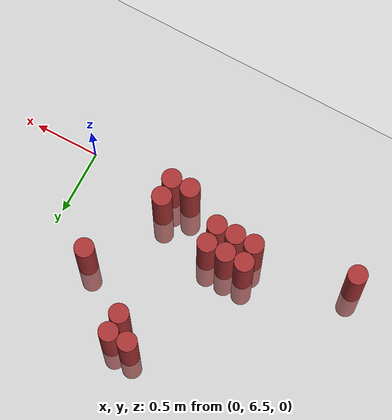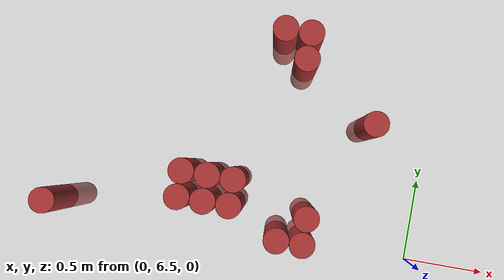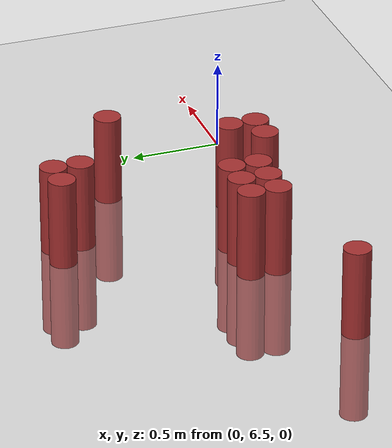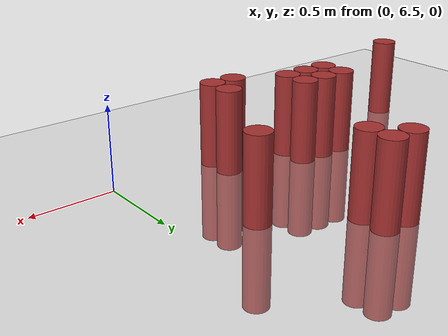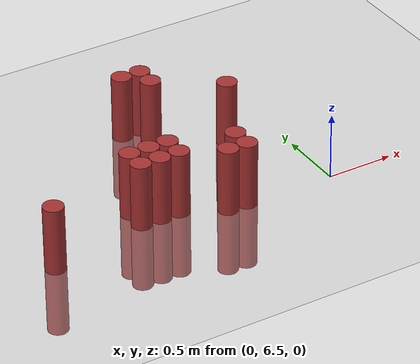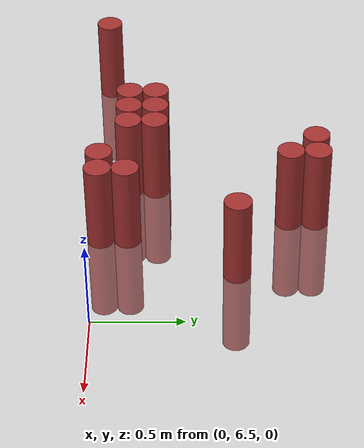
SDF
<sdf version="1.6">
 <world name="world_270">
  <model name="ground_plane">
   <static>1</static>
   <link name="link">
    <collision name="collision">
     <geometry><plane><normal>0 0 1</normal><size>100 100</size></plane></geometry>
     <surface><friction><ode><mu>100</mu><mu2>50</mu2></ode></friction></surface>
    </collision>
    <visual name="visual">
     <cast_shadows>0</cast_shadows>
     <geometry><plane><normal>0 0 1</normal><size>100 100</size></plane></geometry>
     <material>
      <script><uri>file://media/materials/scripts/gazebo.material</uri><name>Gazebo/Grey</name></script>
     </material>
    </visual>
   </link>
  </model>
  <model name="unit_cylinder_159">
   <static>1</static>
   <pose>-2.175000 6.525000 0.000000 0.000000 0.000000 0.000000</pose>
   <link name="link">
    <inertial>
     <mass>1</mass>
     <inertia><ixx>0.145833</ixx><ixy>0</ixy><ixz>0</ixz><iyy>0.145833</iyy><iyz>0</iyz><izz>0.125</izz></inertia>
    </inertial>
    <collision name="collision">
     <geometry><cylinder><radius>0.075000</radius><length>1</length></cylinder></geometry>
    </collision>
    <visual name="visual">
     <geometry><cylinder><radius>0.075000</radius><length>1</length></cylinder></geometry>
     <material>
      <ambient>0.648000 0.192000 0.192000 1</ambient>
      <diffuse>0.648000 0.192000 0.192000 1</diffuse>
     </material>
     <material>
      <script><name>Gazebo/Grey</name><uri>file://media/materials/scripts/gazebo.material</uri></script>
     </material>
    </visual>
   </link>
  </model>
  <model name="unit_cylinder_169">
   <static>1</static>
   <pose>-1.425000 6.675000 0.000000 0.000000 0.000000 0.000000</pose>
   <link name="link">
    <inertial>
     <mass>1</mass>
     <inertia><ixx>0.145833</ixx><ixy>0</ixy><ixz>0</ixz><iyy>0.145833</iyy><iyz>0</iyz><izz>0.125</izz></inertia>
    </inertial>
    <collision name="collision">
     <geometry><cylinder><radius>0.075000</radius><length>1</length></cylinder></geometry>
    </collision>
    <visual name="visual">
     <geometry><cylinder><radius>0.075000</radius><length>1</length></cylinder></geometry>
     <material>
      <ambient>0.648000 0.192000 0.192000 1</ambient>
      <diffuse>0.648000 0.192000 0.192000 1</diffuse>
     </material>
     <material>
      <script><name>Gazebo/Grey</name><uri>file://media/materials/scripts/gazebo.material</uri></script>
     </material>
    </visual>
   </link>
  </model>
  <model name="unit_cylinder_170">
   <static>1</static>
   <pose>-1.425000 6.825000 0.000000 0.000000 0.000000 0.000000</pose>
   <link name="link">
    <inertial>
     <mass>1</mass>
     <inertia><ixx>0.145833</ixx><ixy>0</ixy><ixz>0</ixz><iyy>0.145833</iyy><iyz>0</iyz><izz>0.125</izz></inertia>
    </inertial>
    <collision name="collision">
     <geometry><cylinder><radius>0.075000</radius><length>1</length></cylinder></geometry>
    </collision>
    <visual name="visual">
     <geometry><cylinder><radius>0.075000</radius><length>1</length></cylinder></geometry>
     <material>
      <ambient>0.648000 0.192000 0.192000 1</ambient>
      <diffuse>0.648000 0.192000 0.192000 1</diffuse>
     </material>
     <material>
      <script><name>Gazebo/Grey</name><uri>file://media/materials/scripts/gazebo.material</uri></script>
     </material>
    </visual>
   </link>
  </model>
  <model name="unit_cylinder_173">
   <static>1</static>
   <pose>-1.275000 6.675000 0.000000 0.000000 0.000000 0.000000</pose>
   <link name="link">
    <inertial>
     <mass>1</mass>
     <inertia><ixx>0.145833</ixx><ixy>0</ixy><ixz>0</ixz><iyy>0.145833</iyy><iyz>0</iyz><izz>0.125</izz></inertia>
    </inertial>
    <collision name="collision">
     <geometry><cylinder><radius>0.075000</radius><length>1</length></cylinder></geometry>
    </collision>
    <visual name="visual">
     <geometry><cylinder><radius>0.075000</radius><length>1</length></cylinder></geometry>
     <material>
      <ambient>0.648000 0.192000 0.192000 1</ambient>
      <diffuse>0.648000 0.192000 0.192000 1</diffuse>
     </material>
     <material>
      <script><name>Gazebo/Grey</name><uri>file://media/materials/scripts/gazebo.material</uri></script>
     </material>
    </visual>
   </link>
  </model>
  <model name="unit_cylinder_174">
   <static>1</static>
   <pose>-1.275000 6.825000 0.000000 0.000000 0.000000 0.000000</pose>
   <link name="link">
    <inertial>
     <mass>1</mass>
     <inertia><ixx>0.145833</ixx><ixy>0</ixy><ixz>0</ixz><iyy>0.145833</iyy><iyz>0</iyz><izz>0.125</izz></inertia>
    </inertial>
    <collision name="collision">
     <geometry><cylinder><radius>0.075000</radius><length>1</length></cylinder></geometry>
    </collision>
    <visual name="visual">
     <geometry><cylinder><radius>0.075000</radius><length>1</length></cylinder></geometry>
     <material>
      <ambient>0.648000 0.192000 0.192000 1</ambient>
      <diffuse>0.648000 0.192000 0.192000 1</diffuse>
     </material>
     <material>
      <script><name>Gazebo/Grey</name><uri>file://media/materials/scripts/gazebo.material</uri></script>
     </material>
    </visual>
   </link>
  </model>
  <model name="unit_cylinder_177">
   <static>1</static>
   <pose>-1.125000 6.675000 0.000000 0.000000 0.000000 0.000000</pose>
   <link name="link">
    <inertial>
     <mass>1</mass>
     <inertia><ixx>0.145833</ixx><ixy>0</ixy><ixz>0</ixz><iyy>0.145833</iyy><iyz>0</iyz><izz>0.125</izz></inertia>
    </inertial>
    <collision name="collision">
     <geometry><cylinder><radius>0.075000</radius><length>1</length></cylinder></geometry>
    </collision>
    <visual name="visual">
     <geometry><cylinder><radius>0.075000</radius><length>1</length></cylinder></geometry>
     <material>
      <ambient>0.648000 0.192000 0.192000 1</ambient>
      <diffuse>0.648000 0.192000 0.192000 1</diffuse>
     </material>
     <material>
      <script><name>Gazebo/Grey</name><uri>file://media/materials/scripts/gazebo.material</uri></script>
     </material>
    </visual>
   </link>
  </model>
  <model name="unit_cylinder_178">
   <static>1</static>
   <pose>-1.125000 6.825000 0.000000 0.000000 0.000000 0.000000</pose>
   <link name="link">
    <inertial>
     <mass>1</mass>
     <inertia><ixx>0.145833</ixx><ixy>0</ixy><ixz>0</ixz><iyy>0.145833</iyy><iyz>0</iyz><izz>0.125</izz></inertia>
    </inertial>
    <collision name="collision">
     <geometry><cylinder><radius>0.075000</radius><length>1</length></cylinder></geometry>
    </collision>
    <visual name="visual">
     <geometry><cylinder><radius>0.075000</radius><length>1</length></cylinder></geometry>
     <material>
      <ambient>0.648000 0.192000 0.192000 1</ambient>
      <diffuse>0.648000 0.192000 0.192000 1</diffuse>
     </material>
     <material>
      <script><name>Gazebo/Grey</name><uri>file://media/materials/scripts/gazebo.material</uri></script>
     </material>
    </visual>
   </link>
  </model>
  <model name="unit_cylinder_180">
   <static>1</static>
   <pose>-0.975000 7.725000 0.000000 0.000000 0.000000 0.000000</pose>
   <link name="link">
    <inertial>
     <mass>1</mass>
     <inertia><ixx>0.145833</ixx><ixy>0</ixy><ixz>0</ixz><iyy>0.145833</iyy><iyz>0</iyz><izz>0.125</izz></inertia>
    </inertial>
    <collision name="collision">
     <geometry><cylinder><radius>0.075000</radius><length>1</length></cylinder></geometry>
    </collision>
    <visual name="visual">
     <geometry><cylinder><radius>0.075000</radius><length>1</length></cylinder></geometry>
     <material>
      <ambient>0.648000 0.192000 0.192000 1</ambient>
      <diffuse>0.648000 0.192000 0.192000 1</diffuse>
     </material>
     <material>
      <script><name>Gazebo/Grey</name><uri>file://media/materials/scripts/gazebo.material</uri></script>
     </material>
    </visual>
   </link>
  </model>
  <model name="unit_cylinder_181">
   <static>1</static>
   <pose>-0.825000 6.525000 0.000000 0.000000 0.000000 0.000000</pose>
   <link name="link">
    <inertial>
     <mass>1</mass>
     <inertia><ixx>0.145833</ixx><ixy>0</ixy><ixz>0</ixz><iyy>0.145833</iyy><iyz>0</iyz><izz>0.125</izz></inertia>
    </inertial>
    <collision name="collision">
     <geometry><cylinder><radius>0.075000</radius><length>1</length></cylinder></geometry>
    </collision>
    <visual name="visual">
     <geometry><cylinder><radius>0.075000</radius><length>1</length></cylinder></geometry>
     <material>
      <ambient>0.648000 0.192000 0.192000 1</ambient>
      <diffuse>0.648000 0.192000 0.192000 1</diffuse>
     </material>
     <material>
      <script><name>Gazebo/Grey</name><uri>file://media/materials/scripts/gazebo.material</uri></script>
     </material>
    </visual>
   </link>
  </model>
  <model name="unit_cylinder_182">
   <static>1</static>
   <pose>-0.825000 7.575000 0.000000 0.000000 0.000000 0.000000</pose>
   <link name="link">
    <inertial>
     <mass>1</mass>
     <inertia><ixx>0.145833</ixx><ixy>0</ixy><ixz>0</ixz><iyy>0.145833</iyy><iyz>0</iyz><izz>0.125</izz></inertia>
    </inertial>
    <collision name="collision">
     <geometry><cylinder><radius>0.075000</radius><length>1</length></cylinder></geometry>
    </collision>
    <visual name="visual">
     <geometry><cylinder><radius>0.075000</radius><length>1</length></cylinder></geometry>
     <material>
      <ambient>0.648000 0.192000 0.192000 1</ambient>
      <diffuse>0.648000 0.192000 0.192000 1</diffuse>
     </material>
     <material>
      <script><name>Gazebo/Grey</name><uri>file://media/materials/scripts/gazebo.material</uri></script>
     </material>
    </visual>
   </link>
  </model>
  <model name="unit_cylinder_183">
   <static>1</static>
   <pose>-0.825000 7.725000 0.000000 0.000000 0.000000 0.000000</pose>
   <link name="link">
    <inertial>
     <mass>1</mass>
     <inertia><ixx>0.145833</ixx><ixy>0</ixy><ixz>0</ixz><iyy>0.145833</iyy><iyz>0</iyz><izz>0.125</izz></inertia>
    </inertial>
    <collision name="collision">
     <geometry><cylinder><radius>0.075000</radius><length>1</length></cylinder></geometry>
    </collision>
    <visual name="visual">
     <geometry><cylinder><radius>0.075000</radius><length>1</length></cylinder></geometry>
     <material>
      <ambient>0.648000 0.192000 0.192000 1</ambient>
      <diffuse>0.648000 0.192000 0.192000 1</diffuse>
     </material>
     <material>
      <script><name>Gazebo/Grey</name><uri>file://media/materials/scripts/gazebo.material</uri></script>
     </material>
    </visual>
   </link>
  </model>
  <model name="unit_cylinder_184">
   <static>1</static>
   <pose>-0.675000 6.525000 0.000000 0.000000 0.000000 0.000000</pose>
   <link name="link">
    <inertial>
     <mass>1</mass>
     <inertia><ixx>0.145833</ixx><ixy>0</ixy><ixz>0</ixz><iyy>0.145833</iyy><iyz>0</iyz><izz>0.125</izz></inertia>
    </inertial>
    <collision name="collision">
     <geometry><cylinder><radius>0.075000</radius><length>1</length></cylinder></geometry>
    </collision>
    <visual name="visual">
     <geometry><cylinder><radius>0.075000</radius><length>1</length></cylinder></geometry>
     <material>
      <ambient>0.648000 0.192000 0.192000 1</ambient>
      <diffuse>0.648000 0.192000 0.192000 1</diffuse>
     </material>
     <material>
      <script><name>Gazebo/Grey</name><uri>file://media/materials/scripts/gazebo.material</uri></script>
     </material>
    </visual>
   </link>
  </model>
  <model name="unit_cylinder_185">
   <static>1</static>
   <pose>-0.675000 6.675000 0.000000 0.000000 0.000000 0.000000</pose>
   <link name="link">
    <inertial>
     <mass>1</mass>
     <inertia><ixx>0.145833</ixx><ixy>0</ixy><ixz>0</ixz><iyy>0.145833</iyy><iyz>0</iyz><izz>0.125</izz></inertia>
    </inertial>
    <collision name="collision">
     <geometry><cylinder><radius>0.075000</radius><length>1</length></cylinder></geometry>
    </collision>
    <visual name="visual">
     <geometry><cylinder><radius>0.075000</radius><length>1</length></cylinder></geometry>
     <material>
      <ambient>0.648000 0.192000 0.192000 1</ambient>
      <diffuse>0.648000 0.192000 0.192000 1</diffuse>
     </material>
     <material>
      <script><name>Gazebo/Grey</name><uri>file://media/materials/scripts/gazebo.material</uri></script>
     </material>
    </visual>
   </link>
  </model>
  <model name="unit_cylinder_186">
   <static>1</static>
   <pose>-0.375000 7.275000 0.000000 0.000000 0.000000 0.000000</pose>
   <link name="link">
    <inertial>
     <mass>1</mass>
     <inertia><ixx>0.145833</ixx><ixy>0</ixy><ixz>0</ixz><iyy>0.145833</iyy><iyz>0</iyz><izz>0.125</izz></inertia>
    </inertial>
    <collision name="collision">
     <geometry><cylinder><radius>0.075000</radius><length>1</length></cylinder></geometry>
    </collision>
    <visual name="visual">
     <geometry><cylinder><radius>0.075000</radius><length>1</length></cylinder></geometry>
     <material>
      <ambient>0.648000 0.192000 0.192000 1</ambient>
      <diffuse>0.648000 0.192000 0.192000 1</diffuse>
     </material>
     <material>
      <script><name>Gazebo/Grey</name><uri>file://media/materials/scripts/gazebo.material</uri></script>
     </material>
    </visual>
   </link>
  </model>
 </world>
</sdf>
